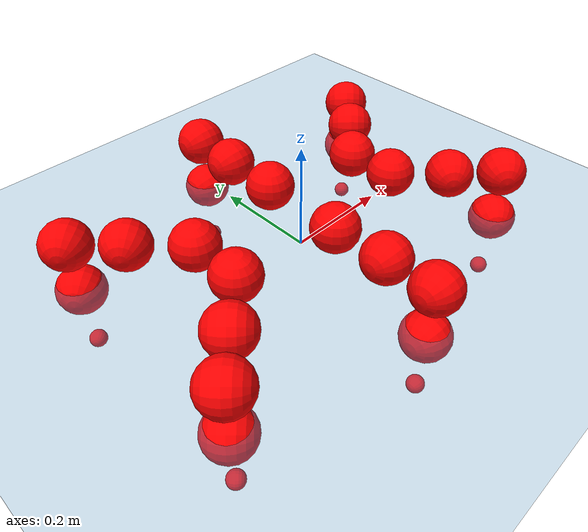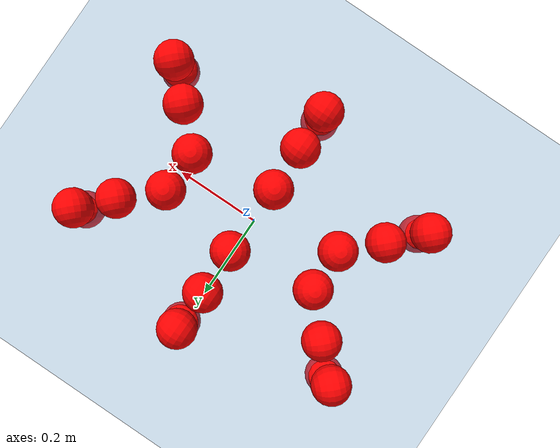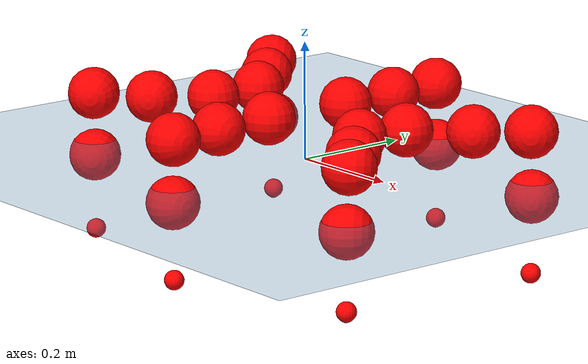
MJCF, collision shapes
<mujoco model="Golem">
  <compiler angle="radian" assetdir="assets" balanceinertia="true" inertiafromgeom="false"/>

  <option timestep="0.005" density="1.2" viscosity="2e-05"/>

  <size nkey="1"/>

  <visual>
    <quality shadowsize="8192"/>
    <map shadowclip="0.5"/>
  </visual>

  <default>
    <default class="/">
      <joint armature="0.01" damping="0.01" frictionloss="0.01"/>
      <geom contype="0" conaffinity="0" group="1" solref="-1000 -80"/>
      <site size="0.01 0.005 0.005" group="5"/>
      <general forcelimited="true" biastype="affine" gainprm="25" biasprm="0 -25 -0.5"/>
      <default class="visual">
        <geom type="mesh" group="2"/>
      </default>
      <default class="collision">
        <geom group="3"/>
      </default>
      <default class="foot">
        <geom size="0.01 0 0" condim="6" group="4" priority="1" solimp="0.015 1 0.01"/>
      </default>
      <default class="reward_collision_sphere">
        <geom group="5" rgba="1 0 0 1"/>
      </default>
    </default>
  </default>

  <asset>
    <texture type="skybox" colorspace="auto" name="//unnamed_texture_0" builtin="gradient" rgb1="0.95 0.95 0.95" rgb2="0.95 0.95 0.95" width="100" height="600"/>
    <texture type="2d" colorspace="auto" name="texplane" builtin="checker" rgb1="0.345 0.575 0.748" rgb2="0.345 0.575 0.748" markrgb="1 1 1" width="512" height="512"/>
    <material name="MatPlane" class="/" texture="texplane" texuniform="true" texrepeat="2 2" specular="0.9"/>
    <mesh name="body" class="/" file="body.stl" scale="0.001 0.001 0.001"/>
    <mesh name="coxa" class="/" file="coxa.stl" scale="0.001 0.001 0.001"/>
    <mesh name="femur" class="/" file="femur.stl" scale="0.001 0.001 0.001"/>
    <mesh name="tibia" class="/" file="tibia.stl" scale="0.001 0.001 0.001"/>
    <mesh name="tarsus" class="/" file="tarsus.stl" scale="0.001 0.001 0.001"/>
  </asset>

  <worldbody>
    <geom name="floor" class="/" size="100 100 0.125" type="plane" group="0" material="MatPlane"/>
    <light name="toplight_shadow" class="/" pos="0 0 5" dir="0.0990148 0.0990148 -0.990148" type="directional" ambient="0.04 0.04 0.04" diffuse="0.55 0.55 0.55" specular="0.12 0.12 0.12"/>
    <light name="toplight_fill" class="/" pos="0 0 5" dir="0.0990148 0.0990148 -0.990148" type="directional" castshadow="false" ambient="0.04 0.04 0.04" diffuse="0.3 0.3 0.3" specular="0.08 0.08 0.08"/>
    <body name="trunk" pos="0.0024657 0.00230082 0.00201544" quat="1 1.56773e-05 6.67606e-06 -1.70426e-05">
      <inertial pos="0.000182082 -0.00107974 -0.00114689" quat="0.999999 -0.000924706 0.000169907 -0.000738882" mass="5.08781" diaginertia="0.0250064 0.00554491 0.0284921"/>
      <joint name="//unnamed_joint_0" type="free"/>
      <geom name="//unnamed_geom_1" class="/" pos="0 0 0.0788764" quat="1 0 0 0" type="mesh" rgba="0.9 0.9 0.9 1" mesh="body"/>
      <site name="imu" class="/" pos="0.171234 0.013679 0.123381" size="0.0111235"/>
      <camera name="track" class="/" pos="0 -1.7799 0" quat="0.707107 0.707107 0 0" mode="trackcom"/>
      <camera name="ego_camera" class="/" pos="0.157905 0 0.123244" quat="-0.5 -0.5 0.5 0.5"/>
      <body name="coxa_RR" pos="-0.216499 -0.0749939 0.0785252" quat="0.382648 3.79405e-05 -7.62902e-05 -0.923894">
        <inertial pos="-0.000492602 -0.00222333 -0.00087224" quat="0.999909 -0.000390196 -0.00407284 0.0128349" mass="0.264477" diaginertia="0.0252816 0.00533488 0.027145"/>
        <joint name="coxa_joint_RR" class="/" pos="0 0 0" axis="0.00235188 -0.000185766 -0.999997" range="-3.13348 3.14095" armature="0.00970355" damping="0" frictionloss="0.0111625"/>
        <geom name="//unnamed_geom_2" class="/" type="mesh" rgba="0.2 0.2 0.2 1" mesh="coxa"/>
        <geom name="//unnamed_geom_3" class="reward_collision_sphere" size="0.0444939" pos="-0.0364395 0 0"/>
        <body name="femur_RR" pos="0.0694028 -0.000925762 -0.00383832" quat="0.500109 -0.500111 0.499846 0.499934">
          <inertial pos="-0.00169803 -0.000959788 -0.000393616" quat="1 -0.000668052 -0.000202386 1.30419e-05" mass="0.276376" diaginertia="0.0266093 0.00560996 0.0292798"/>
          <joint name="femur_joint_RR" class="/" pos="0 0 0" axis="-0.00100072 -0.000534408 -0.999999" range="-3.19458 3.08548" armature="0.0113048" damping="0.00948716" frictionloss="0.0126776"/>
          <geom name="//unnamed_geom_4" class="/" type="mesh" rgba="0.9 0.9 0.9 1" mesh="femur"/>
          <geom name="//unnamed_geom_5" class="reward_collision_sphere" size="0.0444939"/>
          <body name="tibia_RR" pos="-0.00436887 -0.098913 0.00253448" quat="-0.000933846 0.999999 -0.00056076 -2.33816e-05">
            <inertial pos="-0.00276183 0.000726742 -0.000177819" quat="0.999999 0.000156313 -0.000276833 0.00161485" mass="0.27655" diaginertia="0.0259607 0.00543225 0.0267589"/>
            <joint name="tibia_joint_RR" class="/" pos="0 0 0" axis="-0.0100042 -0.00778774 0.99992" range="-3.11151 3.18678" armature="0.0117032" damping="0" frictionloss="0.0110829"/>
            <geom name="//unnamed_geom_6" class="/" type="mesh" rgba="0.2 0.2 0.2 1" mesh="tibia"/>
            <geom name="//unnamed_geom_7" class="reward_collision_sphere" size="0.0444939"/>
            <body name="tarsus_RR" pos="0.108589 -0.000366581 0.00221909" quat="1 2.98153e-05 2.88113e-07 1.5595e-05">
              <inertial pos="0.0763459 0.000523841 0.00161033" quat="0.498459 0.500425 0.501066 0.500047" mass="0.27835" diaginertia="0.0265353 0.00572663 0.0289077"/>
              <joint name="tarsus_joint_RR" class="/" pos="0 0 0" axis="-0.00672951 0.00147526 0.999976" range="-3.19388 3.18934" armature="0.0112388" damping="0.0411786" frictionloss="0.0101969"/>
              <geom name="//unnamed_geom_8" class="/" type="mesh" rgba="0.9 0.9 0.9 1" mesh="tarsus"/>
              <geom name="foot_1" class="foot" size="0.0112769" pos="0.136041 0 0" quat="0 -0.707107 0 0.707107"/>
              <geom name="//unnamed_geom_10" class="reward_collision_sphere" size="0.0444939"/>
              <geom name="//unnamed_geom_11" class="reward_collision_sphere" size="0.0166852" pos="0.130575 0 0"/>
              <site name="foot_1" class="foot" pos="0.136041 0 0" quat="0 -0.707107 0 0.707107" size="0.0111235"/>
            </body>
          </body>
        </body>
      </body>
      <body name="coxa_RM" pos="-0.000516694 -0.117804 0.0801577" quat="0.707065 0.00121243 -0.000105707 -0.707147">
        <inertial pos="0.00285494 0.000241492 -0.00121168" quat="0.999973 -0.00322199 -0.00531876 -0.00396481" mass="0.271758" diaginertia="0.0258954 0.00543945 0.0294733"/>
        <joint name="coxa_joint_RM" class="/" pos="0 0 0" axis="0.00191347 -0.00045451 -0.999998" stiffness="0.00777988" range="-3.15573 3.12164" armature="0.011001" damping="0.000543453" frictionloss="0.0100941"/>
        <geom name="//unnamed_geom_12" class="/" type="mesh" rgba="0.2 0.2 0.2 1" mesh="coxa"/>
        <geom name="//unnamed_geom_13" class="reward_collision_sphere" size="0.0444939" pos="-0.0364395 0 0"/>
        <body name="femur_RM" pos="0.0705644 0.00249965 -0.000728282" quat="0.498989 -0.499953 0.500618 0.500438">
          <inertial pos="-0.000552652 -0.00136177 0.000172855" quat="0.999996 -0.00189247 0.00213546 -0.000801152" mass="0.283032" diaginertia="0.0271861 0.00553784 0.0293918"/>
          <joint name="femur_joint_RM" class="/" pos="0 0 0" axis="-0.00114815 0.0110983 -0.999938" stiffness="0.00747831" range="-3.15569 3.14534" armature="0.0102319" damping="0.0256395" frictionloss="0.0110644"/>
          <geom name="//unnamed_geom_14" class="/" type="mesh" rgba="0.9 0.9 0.9 1" mesh="femur"/>
          <geom name="//unnamed_geom_15" class="reward_collision_sphere" size="0.0444939"/>
          <body name="tibia_RM" pos="0.00149225 -0.0944566 0.0021269" quat="1.06377e-07 1 -1.04857e-07 -3.17886e-07">
            <inertial pos="0.00267174 -0.00246582 0.000290279" quat="0.999908 0.00303248 -0.00551972 -0.0119975" mass="0.263397" diaginertia="0.0260224 0.00568407 0.0285449"/>
            <joint name="tibia_joint_RM" class="/" pos="0 0 0" axis="0.000573609 5.49431e-05 1" range="-3.19396 3.17661" armature="0.0109745" damping="0.0141992" frictionloss="0.010792"/>
            <geom name="//unnamed_geom_16" class="/" type="mesh" rgba="0.2 0.2 0.2 1" mesh="tibia"/>
            <geom name="//unnamed_geom_17" class="reward_collision_sphere" size="0.0444939"/>
            <body name="tarsus_RM" pos="0.106559 -0.000134599 0.00289743" quat="1 -5.74576e-06 -1.17934e-05 -2.1125e-05">
              <inertial pos="0.0726577 -0.0021466 0.0029741" quat="0.502073 0.507727 0.498668 0.491393" mass="0.283158" diaginertia="0.0255027 0.00541347 0.0274063"/>
              <joint name="tarsus_joint_RM" class="/" pos="0 0 0" axis="0.00024936 7.57842e-07 1" range="-3.0898 3.14113" armature="0.0118221" damping="0.0107772" frictionloss="0.0108523"/>
              <geom name="//unnamed_geom_18" class="/" type="mesh" rgba="0.9 0.9 0.9 1" mesh="tarsus"/>
              <geom name="foot_2" class="foot" size="0.0110824" pos="0.136041 0 0" quat="0 -0.707107 0 0.707107"/>
              <geom name="//unnamed_geom_20" class="reward_collision_sphere" size="0.0444939"/>
              <geom name="//unnamed_geom_21" class="reward_collision_sphere" size="0.0166852" pos="0.130575 0 0"/>
              <site name="foot_2" class="foot" pos="0.136041 0 0" quat="0 -0.707107 0 0.707107" size="0.0111235"/>
            </body>
          </body>
        </body>
      </body>
      <body name="coxa_RF" pos="0.214979 -0.0717704 0.0812998" quat="0.924083 -0.000289018 0.000136795 -0.382192">
        <inertial pos="3.65075e-05 0.00211658 0.000165144" quat="1 -2.77289e-05 -2.93801e-05 -5.975e-05" mass="0.27124" diaginertia="0.0264361 0.00555996 0.0276622"/>
        <joint name="coxa_joint_RF" class="/" pos="0 0 0" axis="0.00119339 -0.000809967 -0.999999" range="-3.13652 3.12996" armature="0.0126692" damping="0.00555263" frictionloss="0.010841"/>
        <geom name="//unnamed_geom_22" class="/" type="mesh" rgba="0.2 0.2 0.2 1" mesh="coxa"/>
        <geom name="//unnamed_geom_23" class="reward_collision_sphere" size="0.0444939" pos="-0.0364395 0 0"/>
        <body name="femur_RF" pos="0.0734814 -0.000866429 -0.00128167" quat="0.499677 -0.500092 0.500082 0.500149">
          <inertial pos="0.00125173 -0.00264544 -6.98372e-05" quat="0.99998 0.00338985 -0.00217733 0.00484847" mass="0.269684" diaginertia="0.0264278 0.00530696 0.028776"/>
          <joint name="femur_joint_RF" class="/" pos="0 0 0" axis="-0.00142378 0.000579979 -0.999999" stiffness="0.00674139" range="-3.18725 3.14216" armature="0.00944373" damping="0.00827547" frictionloss="0.0126761"/>
          <geom name="//unnamed_geom_24" class="/" type="mesh" rgba="0.9 0.9 0.9 1" mesh="femur"/>
          <geom name="//unnamed_geom_25" class="reward_collision_sphere" size="0.0444939"/>
          <body name="tibia_RF" pos="-0.0027774 -0.0969711 0.00150892" quat="-2.46467e-07 1 0.000188903 9.65592e-05">
            <inertial pos="-0.00199609 0.000301687 0.000785852" quat="1 -0.000146795 0.000664391 -0.000109242" mass="0.281671" diaginertia="0.0254419 0.00570012 0.0280306"/>
            <joint name="tibia_joint_RF" class="/" pos="0 0 0" axis="-0.00233184 0.0105133 0.999942" range="-3.13267 3.09184" armature="0.0107575" damping="0.0075111" frictionloss="0.0111792"/>
            <geom name="//unnamed_geom_26" class="/" type="mesh" rgba="0.2 0.2 0.2 1" mesh="tibia"/>
            <geom name="//unnamed_geom_27" class="reward_collision_sphere" size="0.0444939"/>
            <body name="tarsus_RF" pos="0.103707 0.00218844 0.00338938" quat="0.999999 -0.001157 -0.000561865 0.000127297">
              <inertial pos="0.0725509 -0.000714614 0.00029549" quat="0.499874 0.500093 0.500082 0.499951" mass="0.277282" diaginertia="0.0260437 0.00562291 0.0291404"/>
              <joint name="tarsus_joint_RF" class="/" pos="0 0 0" axis="-0.00331976 0.0135738 0.999902" range="-3.15924 3.1469" armature="0.0123903" damping="0.0138936" frictionloss="0.0101025"/>
              <geom name="//unnamed_geom_28" class="/" type="mesh" rgba="0.9 0.9 0.9 1" mesh="tarsus"/>
              <geom name="foot_3" class="foot" size="0.0121621" pos="0.136041 0 0" quat="0 -0.707107 0 0.707107"/>
              <geom name="//unnamed_geom_30" class="reward_collision_sphere" size="0.0444939"/>
              <geom name="//unnamed_geom_31" class="reward_collision_sphere" size="0.0166852" pos="0.130575 0 0"/>
              <site name="foot_3" class="foot" pos="0.136041 0 0" quat="0 -0.707107 0 0.707107" size="0.0111235"/>
            </body>
          </body>
        </body>
      </body>
      <body name="coxa_LR" pos="-0.218367 0.0752798 0.079397" quat="0.38291 9.30941e-05 7.81017e-05 0.923786">
        <inertial pos="-0.00247208 0.00147699 -0.00150556" quat="0.999932 0.00108354 -0.011545 0.000862646" mass="0.275284" diaginertia="0.0274337 0.005911 0.0295055"/>
        <joint name="coxa_joint_LR" class="/" pos="0 0 0" axis="-0.0151969 -0.00035238 -0.999884" stiffness="0.0103318" range="-3.13637 3.10025" armature="0.00987001" damping="0.00148092" frictionloss="0.00956441"/>
        <geom name="//unnamed_geom_32" class="/" type="mesh" rgba="0.2 0.2 0.2 1" mesh="coxa"/>
        <geom name="//unnamed_geom_33" class="reward_collision_sphere" size="0.0444939" pos="-0.0364395 0 0"/>
        <body name="femur_LR" pos="0.075804 -0.00262402 -0.00154737" quat="0.499976 -0.499963 0.500159 0.499902">
          <inertial pos="-0.000869831 -0.000905448 0.000542442" quat="0.999945 -0.000982367 -0.00479368 -0.00932784" mass="0.275028" diaginertia="0.0267434 0.00581014 0.0288223"/>
          <joint name="femur_joint_LR" class="/" pos="0 0 0" axis="-0.0119708 0.00258758 0.999925" range="-3.13879 3.14942" armature="0.0106694" damping="0" frictionloss="0.00991868"/>
          <geom name="//unnamed_geom_34" class="/" type="mesh" rgba="0.9 0.9 0.9 1" mesh="femur"/>
          <geom name="//unnamed_geom_35" class="reward_collision_sphere" size="0.0444939"/>
          <body name="tibia_LR" pos="-0.00185373 -0.0965649 0.00219187" quat="-0.000541194 0.999999 0.0012645 -1.2937e-05">
            <inertial pos="-0.000240014 -0.000124329 0.000207205" quat="0.999987 -0.0045338 0.00178198 -0.00179344" mass="0.282623" diaginertia="0.0269497 0.00571043 0.0294388"/>
            <joint name="tibia_joint_LR" class="/" pos="0 0 0" axis="0.00656708 0.00526437 -0.999965" range="-3.178 3.08312" armature="0.011473" damping="0.00562378" frictionloss="0.0107774"/>
            <geom name="//unnamed_geom_36" class="/" type="mesh" rgba="0.2 0.2 0.2 1" mesh="tibia"/>
            <geom name="//unnamed_geom_37" class="reward_collision_sphere" size="0.0444939"/>
            <body name="tarsus_LR" pos="0.105216 0.000442408 0.00304672" quat="0.999999 0.000984035 0.000170343 -0.000868101">
              <inertial pos="0.0758571 0.000357815 -0.00213218" quat="0.49973 0.499238 0.50022 0.50081" mass="0.267613" diaginertia="0.0265882 0.00541076 0.0287539"/>
              <joint name="tarsus_joint_LR" class="/" pos="0 0 0" axis="-0.00755406 -0.00705745 -0.999947" range="-3.19567 3.08335" armature="0.0106495" damping="0" frictionloss="0.0114479"/>
              <geom name="//unnamed_geom_38" class="/" type="mesh" rgba="0.9 0.9 0.9 1" mesh="tarsus"/>
              <geom name="foot_4" class="foot" size="0.0121661" pos="0.136041 0 0" quat="0.707107 0 -0.707107 0"/>
              <geom name="//unnamed_geom_40" class="reward_collision_sphere" size="0.0444939"/>
              <geom name="//unnamed_geom_41" class="reward_collision_sphere" size="0.0166852" pos="0.130575 0 0"/>
              <site name="foot_4" class="foot" pos="0.136041 0 0" quat="0.707107 0 -0.707107 0" size="0.0111235"/>
            </body>
          </body>
        </body>
      </body>
      <body name="coxa_LM" pos="0.00246675 0.11802 0.0813747" quat="0.70653 -0.00010019 -0.000693292 0.707683">
        <inertial pos="5.35805e-05 -0.00069652 -0.000978497" quat="0.999921 -0.00996645 0.00741434 -0.00192461" mass="0.272982" diaginertia="0.0255555 0.00546477 0.0282605"/>
        <joint name="coxa_joint_LM" class="/" pos="0 0 0" axis="-0.00406405 -0.00427525 -0.999983" range="-3.08345 3.12864" armature="0.0119543" damping="0.0209143" frictionloss="0.012682"/>
        <geom name="//unnamed_geom_42" class="/" type="mesh" rgba="0.2 0.2 0.2 1" mesh="coxa"/>
        <geom name="//unnamed_geom_43" class="reward_collision_sphere" size="0.0444939" pos="-0.0364395 0 0"/>
        <body name="femur_LM" pos="0.070727 0.00149728 0.00156878" quat="0.500469 -0.500196 0.500373 0.498961">
          <inertial pos="0.00164815 -0.00295984 0.00210368" quat="0.999923 -0.0104681 0.00623974 0.00247605" mass="0.2745" diaginertia="0.0270078 0.00543664 0.0286493"/>
          <joint name="femur_joint_LM" class="/" pos="0 0 0" axis="0.00905278 0.0113105 0.999895" range="-3.14406 3.08318" armature="0.0122651" damping="0" frictionloss="0.0111066"/>
          <geom name="//unnamed_geom_44" class="/" type="mesh" rgba="0.9 0.9 0.9 1" mesh="femur"/>
          <geom name="//unnamed_geom_45" class="reward_collision_sphere" size="0.0444939"/>
          <body name="tibia_LM" pos="-0.00236208 -0.0943634 -0.00236765" quat="0.000718895 0.999999 0.000565313 -0.000594523">
            <inertial pos="-0.00060926 -0.00292191 0.000338233" quat="0.999918 0.00281982 0.00262974 -0.0122049" mass="0.273213" diaginertia="0.0266228 0.00577905 0.0286222"/>
            <joint name="tibia_joint_LM" class="/" pos="0 0 0" axis="0.00040492 -0.00174892 -0.999998" range="-3.13176 3.14173" armature="0.0124821" damping="0.00358433" frictionloss="0.010014"/>
            <geom name="//unnamed_geom_46" class="/" type="mesh" rgba="0.2 0.2 0.2 1" mesh="tibia"/>
            <geom name="//unnamed_geom_47" class="reward_collision_sphere" size="0.0444939"/>
            <body name="tarsus_LM" pos="0.107678 1.59341e-05 0.00211951" quat="1 0.000767871 0.000314296 -0.00044974">
              <inertial pos="0.0702255 -0.000500241 -0.00190343" quat="0.499969 0.500083 0.499992 0.499956" mass="0.276722" diaginertia="0.0254196 0.0054822 0.0286293"/>
              <joint name="tarsus_joint_LM" class="/" pos="0 0 0" axis="-0.00294792 -0.00184775 -0.999994" range="-3.09673 3.12948" armature="0.0126657" damping="0.00440489" frictionloss="0.0117028"/>
              <geom name="//unnamed_geom_48" class="/" type="mesh" rgba="0.9 0.9 0.9 1" mesh="tarsus"/>
              <geom name="foot_5" class="foot" size="0.011625" pos="0.136041 0 0" quat="0.707107 0 -0.707107 0"/>
              <geom name="//unnamed_geom_50" class="reward_collision_sphere" size="0.0444939"/>
              <geom name="//unnamed_geom_51" class="reward_collision_sphere" size="0.0166852" pos="0.130575 0 0"/>
              <site name="foot_5" class="foot" pos="0.136041 0 0" quat="0.707107 0 -0.707107 0" size="0.0111235"/>
            </body>
          </body>
        </body>
      </body>
      <body name="coxa_LF" pos="0.218399 0.0768969 0.0764891" quat="0.923967 -0.000405818 -0.000213843 0.382472">
        <inertial pos="0.000193684 -0.000422005 -0.000835915" quat="0.999912 0.0044598 0.0115582 -0.0047802" mass="0.259684" diaginertia="0.025535 0.00544895 0.0279591"/>
        <joint name="coxa_joint_LF" class="/" pos="0 0 0" axis="-0.00272028 -0.00254636 -0.999993" stiffness="0.0118346" range="-3.16873 3.18103" armature="0.0125069" damping="0.00821224" frictionloss="0.0096766"/>
        <geom name="//unnamed_geom_52" class="/" type="mesh" rgba="0.2 0.2 0.2 1" mesh="coxa"/>
        <geom name="//unnamed_geom_53" class="reward_collision_sphere" size="0.0444939" pos="-0.0364395 0 0"/>
        <body name="femur_LF" pos="0.0730282 -0.00228704 0.000836265" quat="0.500225 -0.500794 0.499871 0.499108">
          <inertial pos="0.00220518 -0.000538268 -0.000393902" quat="0.999999 -0.000973786 -0.000222033 0.000829467" mass="0.278764" diaginertia="0.0264055 0.00554841 0.0275692"/>
          <joint name="femur_joint_LF" class="/" pos="0 0 0" axis="0.000216596 -0.0005708 1" range="-3.09087 3.12163" armature="0.0126638" damping="0.0192063" frictionloss="0.0113466"/>
          <geom name="//unnamed_geom_54" class="/" type="mesh" rgba="0.9 0.9 0.9 1" mesh="femur"/>
          <geom name="//unnamed_geom_55" class="reward_collision_sphere" size="0.0444939"/>
          <body name="tibia_LF" pos="-0.000895653 -0.0943003 0.00298037" quat="-0.000230829 1 -0.000215815 -8.40298e-05">
            <inertial pos="-0.000277151 0.00288707 0.00133485" quat="1 -0.000388359 -0.000249186 9.84568e-05" mass="0.269985" diaginertia="0.0264603 0.00553709 0.0283311"/>
            <joint name="tibia_joint_LF" class="/" pos="0 0 0" axis="-0.0051937 -0.00191368 -0.999985" range="-3.14481 3.12584" armature="0.00965947" damping="0" frictionloss="0.0121449"/>
            <geom name="//unnamed_geom_56" class="/" type="mesh" rgba="0.2 0.2 0.2 1" mesh="tibia"/>
            <geom name="//unnamed_geom_57" class="reward_collision_sphere" size="0.0444939"/>
            <body name="tarsus_LF" pos="0.10851 0.00186008 0.00112084" quat="0.999999 -0.000930757 0.000503435 0.000685862">
              <inertial pos="0.073693 -0.000365274 -0.00167052" quat="0.49058 0.500753 0.509737 0.498743" mass="0.281827" diaginertia="0.0261988 0.0057701 0.0290296"/>
              <joint name="tarsus_joint_LF" class="/" pos="0 0 0" axis="-0.00237292 0.00853409 -0.999961" stiffness="0.0258796" range="-3.19457 3.17099" armature="0.0109701" damping="0.0229228" frictionloss="0.0114605"/>
              <geom name="//unnamed_geom_58" class="/" type="mesh" rgba="0.9 0.9 0.9 1" mesh="tarsus"/>
              <geom name="foot_6" class="foot" size="0.0106478" pos="0.136041 0 0" quat="0.707107 0 -0.707107 0"/>
              <geom name="//unnamed_geom_60" class="reward_collision_sphere" size="0.0444939"/>
              <geom name="//unnamed_geom_61" class="reward_collision_sphere" size="0.0166852" pos="0.130575 0 0"/>
              <site name="foot_6" class="foot" pos="0.136041 0 0" quat="0.707107 0 -0.707107 0" size="0.0111235"/>
            </body>
          </body>
        </body>
      </body>
    </body>
  </worldbody>

  <contact>
    <pair class="/" geom1="floor" geom2="foot_1" name="//unnamed_contact_0"/>
    <pair class="/" geom1="floor" geom2="foot_2" name="//unnamed_contact_1"/>
    <pair class="/" geom1="floor" geom2="foot_3" name="//unnamed_contact_2"/>
    <pair class="/" geom1="floor" geom2="foot_4" name="//unnamed_contact_3"/>
    <pair class="/" geom1="floor" geom2="foot_5" name="//unnamed_contact_4"/>
    <pair class="/" geom1="floor" geom2="foot_6" name="//unnamed_contact_5"/>
  </contact>

  <actuator>
    <general name="coxa_joint_RR" class="/" joint="coxa_joint_RR" forcerange="-7.82934 7.82934" gainprm="26.3242" biasprm="0 -26.3242 -0.60134"/>
    <general name="femur_joint_RR" class="/" joint="femur_joint_RR" forcerange="-8.1648 8.1648" gainprm="26.3242" biasprm="0 -26.3242 -0.60134"/>
    <general name="tibia_joint_RR" class="/" joint="tibia_joint_RR" forcerange="-8.21287 8.21287" gainprm="26.3242" biasprm="0 -26.3242 -0.60134"/>
    <general name="tarsus_joint_RR" class="/" joint="tarsus_joint_RR" forcerange="-8.96772 8.96772" gainprm="26.3242" biasprm="0 -26.3242 -0.60134"/>
    <general name="coxa_joint_RM" class="/" joint="coxa_joint_RM" forcerange="-7.41045 7.41045" gainprm="26.3242" biasprm="0 -26.3242 -0.60134"/>
    <general name="femur_joint_RM" class="/" joint="femur_joint_RM" forcerange="-8.37505 8.37505" gainprm="26.3242" biasprm="0 -26.3242 -0.60134"/>
    <general name="tibia_joint_RM" class="/" joint="tibia_joint_RM" forcerange="-7.38673 7.38673" gainprm="26.3242" biasprm="0 -26.3242 -0.60134"/>
    <general name="tarsus_joint_RM" class="/" joint="tarsus_joint_RM" forcerange="-7.85634 7.85634" gainprm="26.3242" biasprm="0 -26.3242 -0.60134"/>
    <general name="coxa_joint_RF" class="/" joint="coxa_joint_RF" forcerange="-7.34123 7.34123" gainprm="26.3242" biasprm="0 -26.3242 -0.60134"/>
    <general name="femur_joint_RF" class="/" joint="femur_joint_RF" forcerange="-7.48447 7.48447" gainprm="26.3242" biasprm="0 -26.3242 -0.60134"/>
    <general name="tibia_joint_RF" class="/" joint="tibia_joint_RF" forcerange="-7.46768 7.46768" gainprm="26.3242" biasprm="0 -26.3242 -0.60134"/>
    <general name="tarsus_joint_RF" class="/" joint="tarsus_joint_RF" forcerange="-8.70139 8.70139" gainprm="26.3242" biasprm="0 -26.3242 -0.60134"/>
    <general name="coxa_joint_LR" class="/" joint="coxa_joint_LR" forcerange="-8.07512 8.07512" gainprm="26.3242" biasprm="0 -26.3242 -0.60134"/>
    <general name="femur_joint_LR" class="/" joint="femur_joint_LR" forcerange="-8.10611 8.10611" gainprm="26.3242" biasprm="0 -26.3242 -0.60134"/>
    <general name="tibia_joint_LR" class="/" joint="tibia_joint_LR" forcerange="-8.13642 8.13642" gainprm="26.3242" biasprm="0 -26.3242 -0.60134"/>
    <general name="tarsus_joint_LR" class="/" joint="tarsus_joint_LR" forcerange="-8.31017 8.31017" gainprm="26.3242" biasprm="0 -26.3242 -0.60134"/>
    <general name="coxa_joint_LM" class="/" joint="coxa_joint_LM" forcerange="-8.97319 8.97319" gainprm="26.3242" biasprm="0 -26.3242 -0.60134"/>
    <general name="femur_joint_LM" class="/" joint="femur_joint_LM" forcerange="-8.07851 8.07851" gainprm="26.3242" biasprm="0 -26.3242 -0.60134"/>
    <general name="tibia_joint_LM" class="/" joint="tibia_joint_LM" forcerange="-8.35976 8.35976" gainprm="26.3242" biasprm="0 -26.3242 -0.60134"/>
    <general name="tarsus_joint_LM" class="/" joint="tarsus_joint_LM" forcerange="-8.0839 8.0839" gainprm="26.3242" biasprm="0 -26.3242 -0.60134"/>
    <general name="coxa_joint_LF" class="/" joint="coxa_joint_LF" forcerange="-7.50349 7.50349" gainprm="26.3242" biasprm="0 -26.3242 -0.60134"/>
    <general name="femur_joint_LF" class="/" joint="femur_joint_LF" forcerange="-8.27053 8.27053" gainprm="26.3242" biasprm="0 -26.3242 -0.60134"/>
    <general name="tibia_joint_LF" class="/" joint="tibia_joint_LF" forcerange="-7.91752 7.91752" gainprm="26.3242" biasprm="0 -26.3242 -0.60134"/>
    <general name="tarsus_joint_LF" class="/" joint="tarsus_joint_LF" forcerange="-7.47321 7.47321" gainprm="26.3242" biasprm="0 -26.3242 -0.60134"/>
  </actuator>

  <sensor>
    <gyro site="imu" name="imu_angular_velocity"/>
    <velocimeter site="imu" name="imu_linear_velocity"/>
    <framelinvel objtype="site" objname="foot_1" name="foot_1_global_linear_velocity"/>
    <framelinvel objtype="site" objname="foot_2" name="foot_2_global_linear_velocity"/>
    <framelinvel objtype="site" objname="foot_3" name="foot_3_global_linear_velocity"/>
    <framelinvel objtype="site" objname="foot_4" name="foot_4_global_linear_velocity"/>
    <framelinvel objtype="site" objname="foot_5" name="foot_5_global_linear_velocity"/>
    <framelinvel objtype="site" objname="foot_6" name="foot_6_global_linear_velocity"/>
  </sensor>

  <keyframe>
    <key name="home" qpos="0 0 0.1457 1 0 0 0 0 0 0 0 0 0 0 0 0 0 0 0 0 0 0 0 0 0 0 0 0 0 0 0"/>
  </keyframe>
</mujoco>
